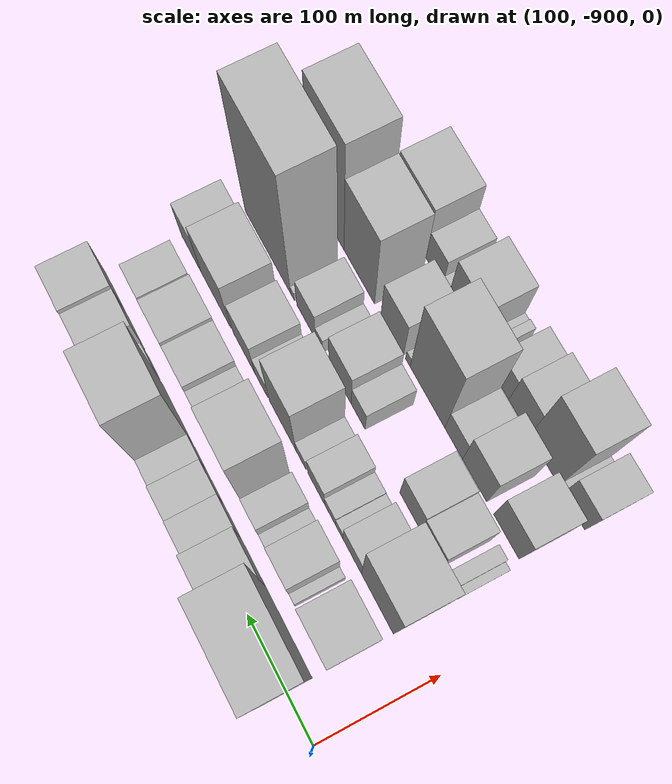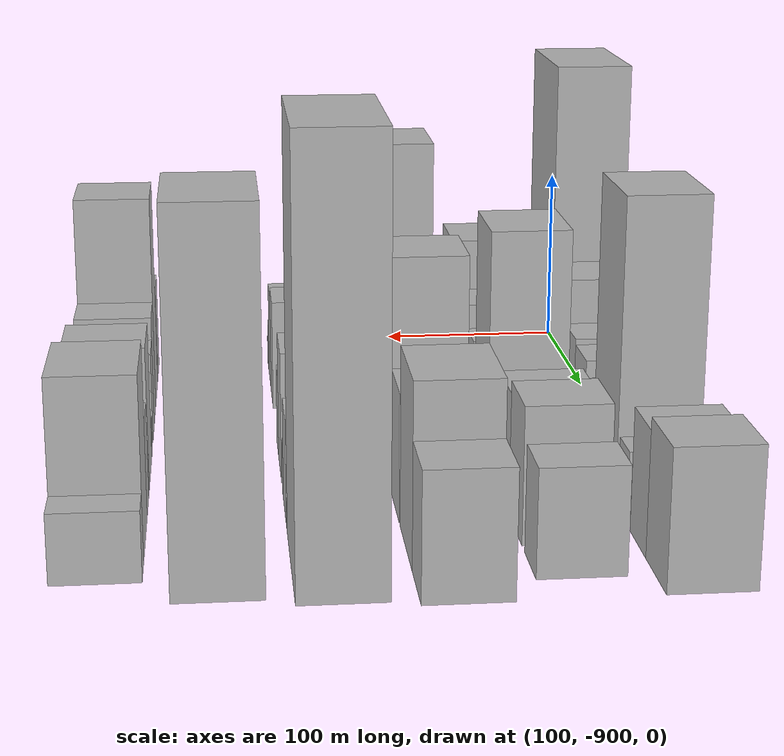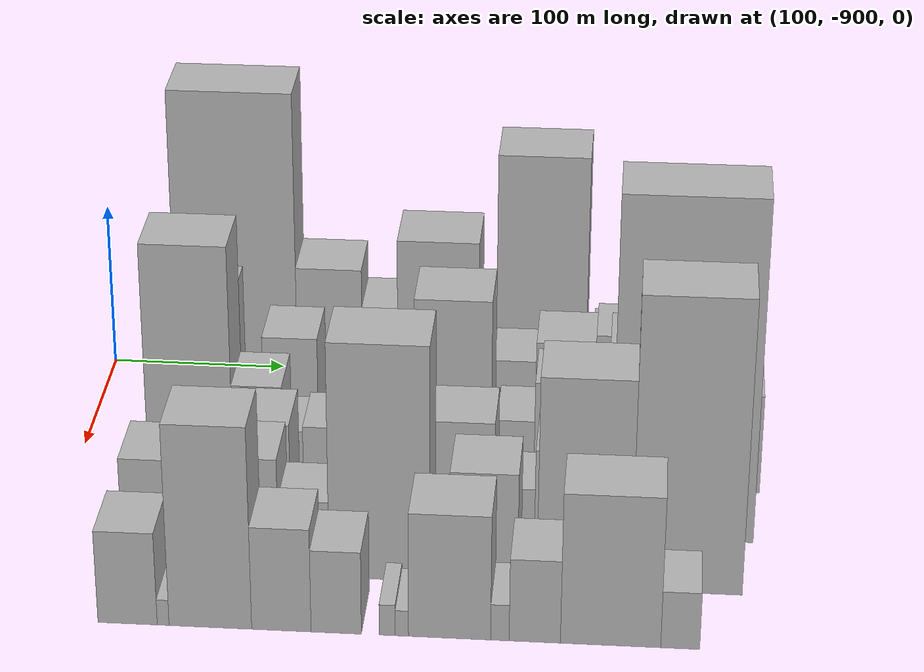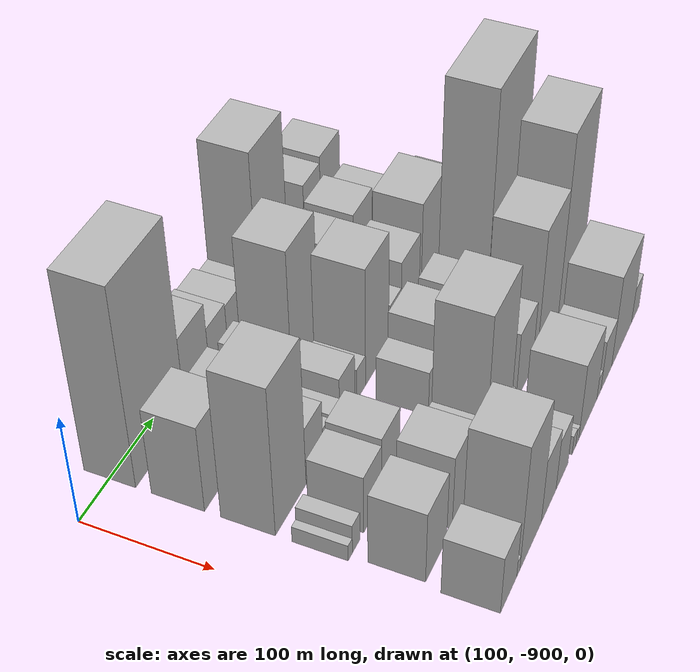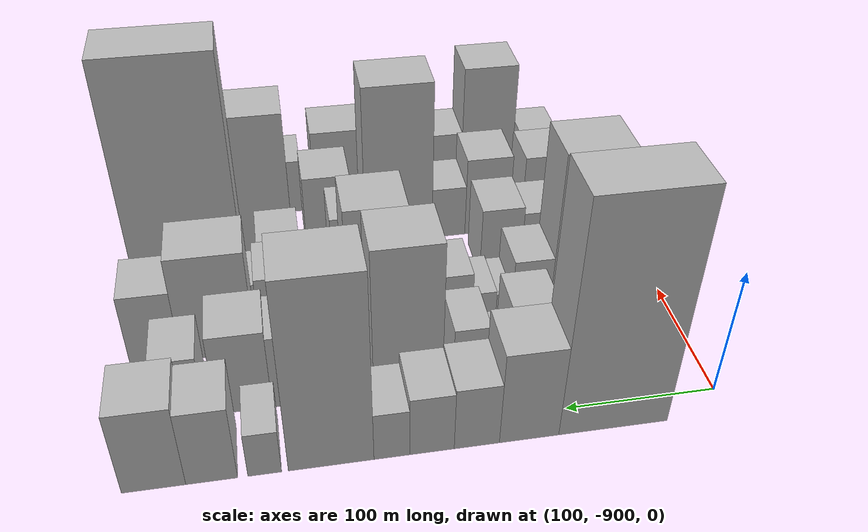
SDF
<sdf version="1.6">
 <world name="default">
  <model name="building_1">
   <static>1</static>
   <pose>100.0000 -824.5503 0 0.000000 0.000000 0.000000</pose>
   <link name="link">
    <pose>0 0 91.50 0 0 0</pose>
    <collision name="collision"><geometry><box><size>40.0000 70.8994 183.0000</size></box></geometry></collision>
    <visual name="visual">
     <cast_shadows>0</cast_shadows>
     <geometry><box><size>40.0000 70.8994 183.0000</size></box></geometry>
     <material>
      <script>
       <uri>model://HANNAS_wall/materials/scripts</uri>
       <uri>model://HANNAS_wall/materials/textures</uri>
       <name>vrc/HANNAS_wall</name>
      </script>
     </material>
    </visual>
   </link>
  </model>
  <model name="building_2">
   <static>1</static>
   <pose>100.0000 -770.1328 0 0.000000 0.000000 0.000000</pose>
   <link name="link">
    <pose>0 0 37.50 0 0 0</pose>
    <collision name="collision"><geometry><box><size>40.0000 37.9356 75.0000</size></box></geometry></collision>
    <visual name="visual">
     <cast_shadows>0</cast_shadows>
     <geometry><box><size>40.0000 37.9356 75.0000</size></box></geometry>
     <material>
      <script>
       <uri>model://HANNAS_wall/materials/scripts</uri>
       <uri>model://HANNAS_wall/materials/textures</uri>
       <name>vrc/HANNAS_wall</name>
      </script>
     </material>
    </visual>
   </link>
  </model>
  <model name="building_3">
   <static>1</static>
   <pose>100.0000 -736.9580 0 0.000000 0.000000 0.000000</pose>
   <link name="link">
    <pose>0 0 25.50 0 0 0</pose>
    <collision name="collision"><geometry><box><size>40.0000 28.4142 51.0000</size></box></geometry></collision>
    <visual name="visual">
     <cast_shadows>0</cast_shadows>
     <geometry><box><size>40.0000 28.4142 51.0000</size></box></geometry>
     <material>
      <script>
       <uri>model://HANNAS_wall/materials/scripts</uri>
       <uri>model://HANNAS_wall/materials/textures</uri>
       <name>vrc/HANNAS_wall</name>
      </script>
     </material>
    </visual>
   </link>
  </model>
  <model name="building_4">
   <static>1</static>
   <pose>100.0000 -708.9636 0 0.000000 0.000000 0.000000</pose>
   <link name="link">
    <pose>0 0 24.00 0 0 0</pose>
    <collision name="collision"><geometry><box><size>40.0000 27.5745 48.0000</size></box></geometry></collision>
    <visual name="visual">
     <cast_shadows>0</cast_shadows>
     <geometry><box><size>40.0000 27.5745 48.0000</size></box></geometry>
     <material>
      <script>
       <uri>model://HANNAS_wall/materials/scripts</uri>
       <uri>model://HANNAS_wall/materials/textures</uri>
       <name>vrc/HANNAS_wall</name>
      </script>
     </material>
    </visual>
   </link>
  </model>
  <model name="building_5">
   <static>1</static>
   <pose>100.0000 -684.1588 0 0.000000 0.000000 0.000000</pose>
   <link name="link">
    <pose>0 0 19.50 0 0 0</pose>
    <collision name="collision"><geometry><box><size>40.0000 22.0353 39.0000</size></box></geometry></collision>
    <visual name="visual">
     <cast_shadows>0</cast_shadows>
     <geometry><box><size>40.0000 22.0353 39.0000</size></box></geometry>
     <material>
      <script>
       <uri>model://HANNAS_wall/materials/scripts</uri>
       <uri>model://HANNAS_wall/materials/textures</uri>
       <name>vrc/HANNAS_wall</name>
      </script>
     </material>
    </visual>
   </link>
  </model>
  <model name="building_6">
   <static>1</static>
   <pose>100.0000 -647.2399 0 0.000000 0.000000 0.000000</pose>
   <link name="link">
    <pose>0 0 75.00 0 0 0</pose>
    <collision name="collision"><geometry><box><size>40.0000 51.8024 150.0000</size></box></geometry></collision>
    <visual name="visual">
     <cast_shadows>0</cast_shadows>
     <geometry><box><size>40.0000 51.8024 150.0000</size></box></geometry>
     <material>
      <script>
       <uri>model://HANNAS_wall/materials/scripts</uri>
       <uri>model://HANNAS_wall/materials/textures</uri>
       <name>vrc/HANNAS_wall</name>
      </script>
     </material>
    </visual>
   </link>
  </model>
  <model name="building_7">
   <static>1</static>
   <pose>100.0000 -607.3084 0 0.000000 0.000000 0.000000</pose>
   <link name="link">
    <pose>0 0 18.00 0 0 0</pose>
    <collision name="collision"><geometry><box><size>40.0000 20.0606 36.0000</size></box></geometry></collision>
    <visual name="visual">
     <cast_shadows>0</cast_shadows>
     <geometry><box><size>40.0000 20.0606 36.0000</size></box></geometry>
     <material>
      <script>
       <uri>model://HANNAS_wall/materials/scripts</uri>
       <uri>model://HANNAS_wall/materials/textures</uri>
       <name>vrc/HANNAS_wall</name>
      </script>
     </material>
    </visual>
   </link>
  </model>
  <model name="building_8">
   <static>1</static>
   <pose>100.0000 -576.0887 0 0.000000 0.000000 0.000000</pose>
   <link name="link">
    <pose>0 0 30.00 0 0 0</pose>
    <collision name="collision"><geometry><box><size>40.0000 30.3787 60.0000</size></box></geometry></collision>
    <visual name="visual">
     <cast_shadows>0</cast_shadows>
     <geometry><box><size>40.0000 30.3787 60.0000</size></box></geometry>
     <material>
      <script>
       <uri>model://HANNAS_wall/materials/scripts</uri>
       <uri>model://HANNAS_wall/materials/textures</uri>
       <name>vrc/HANNAS_wall</name>
      </script>
     </material>
    </visual>
   </link>
  </model>
  <model name="building_9">
   <static>1</static>
   <pose>100.0000 -542.3237 0 0.000000 0.000000 0.000000</pose>
   <link name="link">
    <pose>0 0 33.00 0 0 0</pose>
    <collision name="collision"><geometry><box><size>40.0000 37.1513 66.0000</size></box></geometry></collision>
    <visual name="visual">
     <cast_shadows>0</cast_shadows>
     <geometry><box><size>40.0000 37.1513 66.0000</size></box></geometry>
     <material>
      <script>
       <uri>model://HANNAS_wall/materials/scripts</uri>
       <uri>model://HANNAS_wall/materials/textures</uri>
       <name>vrc/HANNAS_wall</name>
      </script>
     </material>
    </visual>
   </link>
  </model>
  <model name="building_52">
   <static>1</static>
   <pose>152.0000 -838.8743 0 0.000000 0.000000 0.000000</pose>
   <link name="link">
    <pose>0 0 40.50 0 0 0</pose>
    <collision name="collision"><geometry><box><size>40.0000 42.2515 81.0000</size></box></geometry></collision>
    <visual name="visual">
     <cast_shadows>0</cast_shadows>
     <geometry><box><size>40.0000 42.2515 81.0000</size></box></geometry>
     <material>
      <script>
       <uri>model://HANNAS_wall/materials/scripts</uri>
       <uri>model://HANNAS_wall/materials/textures</uri>
       <name>vrc/HANNAS_wall</name>
      </script>
     </material>
    </visual>
   </link>
  </model>
  <model name="building_53">
   <static>1</static>
   <pose>152.0000 -806.5218 0 0.000000 0.000000 0.000000</pose>
   <link name="link">
    <pose>0 0 9.00 0 0 0</pose>
    <collision name="collision"><geometry><box><size>40.0000 8.4535 18.0000</size></box></geometry></collision>
    <visual name="visual">
     <cast_shadows>0</cast_shadows>
     <geometry><box><size>40.0000 8.4535 18.0000</size></box></geometry>
     <material>
      <script>
       <uri>model://HANNAS_wall/materials/scripts</uri>
       <uri>model://HANNAS_wall/materials/textures</uri>
       <name>vrc/HANNAS_wall</name>
      </script>
     </material>
    </visual>
   </link>
  </model>
  <model name="building_54">
   <static>1</static>
   <pose>152.0000 -786.6653 0 0.000000 0.000000 0.000000</pose>
   <link name="link">
    <pose>0 0 28.50 0 0 0</pose>
    <collision name="collision"><geometry><box><size>40.0000 31.2594 57.0000</size></box></geometry></collision>
    <visual name="visual">
     <cast_shadows>0</cast_shadows>
     <geometry><box><size>40.0000 31.2594 57.0000</size></box></geometry>
     <material>
      <script>
       <uri>model://HANNAS_wall/materials/scripts</uri>
       <uri>model://HANNAS_wall/materials/textures</uri>
       <name>vrc/HANNAS_wall</name>
      </script>
     </material>
    </visual>
   </link>
  </model>
  <model name="building_55">
   <static>1</static>
   <pose>152.0000 -761.8692 0 0.000000 0.000000 0.000000</pose>
   <link name="link">
    <pose>0 0 12.00 0 0 0</pose>
    <collision name="collision"><geometry><box><size>40.0000 10.3329 24.0000</size></box></geometry></collision>
    <visual name="visual">
     <cast_shadows>0</cast_shadows>
     <geometry><box><size>40.0000 10.3329 24.0000</size></box></geometry>
     <material>
      <script>
       <uri>model://HANNAS_wall/materials/scripts</uri>
       <uri>model://HANNAS_wall/materials/textures</uri>
       <name>vrc/HANNAS_wall</name>
      </script>
     </material>
    </visual>
   </link>
  </model>
  <model name="building_56">
   <static>1</static>
   <pose>152.0000 -744.6874 0 0.000000 0.000000 0.000000</pose>
   <link name="link">
    <pose>0 0 24.00 0 0 0</pose>
    <collision name="collision"><geometry><box><size>40.0000 24.0308 48.0000</size></box></geometry></collision>
    <visual name="visual">
     <cast_shadows>0</cast_shadows>
     <geometry><box><size>40.0000 24.0308 48.0000</size></box></geometry>
     <material>
      <script>
       <uri>model://HANNAS_wall/materials/scripts</uri>
       <uri>model://HANNAS_wall/materials/textures</uri>
       <name>vrc/HANNAS_wall</name>
      </script>
     </material>
    </visual>
   </link>
  </model>
  <model name="building_57">
   <static>1</static>
   <pose>152.0000 -702.9129 0 0.000000 0.000000 0.000000</pose>
   <link name="link">
    <pose>0 0 60.00 0 0 0</pose>
    <collision name="collision"><geometry><box><size>40.0000 45.5181 120.0000</size></box></geometry></collision>
    <visual name="visual">
     <cast_shadows>0</cast_shadows>
     <geometry><box><size>40.0000 45.5181 120.0000</size></box></geometry>
     <material>
      <script>
       <uri>model://HANNAS_wall/materials/scripts</uri>
       <uri>model://HANNAS_wall/materials/textures</uri>
       <name>vrc/HANNAS_wall</name>
      </script>
     </material>
    </visual>
   </link>
  </model>
  <model name="building_58">
   <static>1</static>
   <pose>152.0000 -660.0208 0 0.000000 0.000000 0.000000</pose>
   <link name="link">
    <pose>0 0 24.00 0 0 0</pose>
    <collision name="collision"><geometry><box><size>40.0000 24.2662 48.0000</size></box></geometry></collision>
    <visual name="visual">
     <cast_shadows>0</cast_shadows>
     <geometry><box><size>40.0000 24.2662 48.0000</size></box></geometry>
     <material>
      <script>
       <uri>model://HANNAS_wall/materials/scripts</uri>
       <uri>model://HANNAS_wall/materials/textures</uri>
       <name>vrc/HANNAS_wall</name>
      </script>
     </material>
    </visual>
   </link>
  </model>
  <model name="building_59">
   <static>1</static>
   <pose>152.0000 -631.2633 0 0.000000 0.000000 0.000000</pose>
   <link name="link">
    <pose>0 0 30.00 0 0 0</pose>
    <collision name="collision"><geometry><box><size>40.0000 33.2488 60.0000</size></box></geometry></collision>
    <visual name="visual">
     <cast_shadows>0</cast_shadows>
     <geometry><box><size>40.0000 33.2488 60.0000</size></box></geometry>
     <material>
      <script>
       <uri>model://HANNAS_wall/materials/scripts</uri>
       <uri>model://HANNAS_wall/materials/textures</uri>
       <name>vrc/HANNAS_wall</name>
      </script>
     </material>
    </visual>
   </link>
  </model>
  <model name="building_60">
   <static>1</static>
   <pose>152.0000 -596.8617 0 0.000000 0.000000 0.000000</pose>
   <link name="link">
    <pose>0 0 33.00 0 0 0</pose>
    <collision name="collision"><geometry><box><size>40.0000 35.5542 66.0000</size></box></geometry></collision>
    <visual name="visual">
     <cast_shadows>0</cast_shadows>
     <geometry><box><size>40.0000 35.5542 66.0000</size></box></geometry>
     <material>
      <script>
       <uri>model://HANNAS_wall/materials/scripts</uri>
       <uri>model://HANNAS_wall/materials/textures</uri>
       <name>vrc/HANNAS_wall</name>
      </script>
     </material>
    </visual>
   </link>
  </model>
  <model name="building_61">
   <static>1</static>
   <pose>152.0000 -557.7539 0 0.000000 0.000000 0.000000</pose>
   <link name="link">
    <pose>0 0 25.50 0 0 0</pose>
    <collision name="collision"><geometry><box><size>40.0000 28.6614 51.0000</size></box></geometry></collision>
    <visual name="visual">
     <cast_shadows>0</cast_shadows>
     <geometry><box><size>40.0000 28.6614 51.0000</size></box></geometry>
     <material>
      <script>
       <uri>model://HANNAS_wall/materials/scripts</uri>
       <uri>model://HANNAS_wall/materials/textures</uri>
       <name>vrc/HANNAS_wall</name>
      </script>
     </material>
    </visual>
   </link>
  </model>
  <model name="building_105">
   <static>1</static>
   <pose>204.0000 -836.2265 0 0.000000 0.000000 0.000000</pose>
   <link name="link">
    <pose>0 0 69.00 0 0 0</pose>
    <collision name="collision"><geometry><box><size>40.0000 47.5469 138.0000</size></box></geometry></collision>
    <visual name="visual">
     <cast_shadows>0</cast_shadows>
     <geometry><box><size>40.0000 47.5469 138.0000</size></box></geometry>
     <material>
      <script>
       <uri>model://HANNAS_wall/materials/scripts</uri>
       <uri>model://HANNAS_wall/materials/textures</uri>
       <name>vrc/HANNAS_wall</name>
      </script>
     </material>
    </visual>
   </link>
  </model>
  <model name="building_106">
   <static>1</static>
   <pose>204.0000 -798.6100 0 0.000000 0.000000 0.000000</pose>
   <link name="link">
    <pose>0 0 27.00 0 0 0</pose>
    <collision name="collision"><geometry><box><size>40.0000 27.6861 54.0000</size></box></geometry></collision>
    <visual name="visual">
     <cast_shadows>0</cast_shadows>
     <geometry><box><size>40.0000 27.6861 54.0000</size></box></geometry>
     <material>
      <script>
       <uri>model://HANNAS_wall/materials/scripts</uri>
       <uri>model://HANNAS_wall/materials/textures</uri>
       <name>vrc/HANNAS_wall</name>
      </script>
     </material>
    </visual>
   </link>
  </model>
  <model name="building_107">
   <static>1</static>
   <pose>204.0000 -779.1388 0 0.000000 0.000000 0.000000</pose>
   <link name="link">
    <pose>0 0 13.50 0 0 0</pose>
    <collision name="collision"><geometry><box><size>40.0000 11.2562 27.0000</size></box></geometry></collision>
    <visual name="visual">
     <cast_shadows>0</cast_shadows>
     <geometry><box><size>40.0000 11.2562 27.0000</size></box></geometry>
     <material>
      <script>
       <uri>model://HANNAS_wall/materials/scripts</uri>
       <uri>model://HANNAS_wall/materials/textures</uri>
       <name>vrc/HANNAS_wall</name>
      </script>
     </material>
    </visual>
   </link>
  </model>
  <model name="building_108">
   <static>1</static>
   <pose>204.0000 -765.1282 0 0.000000 0.000000 0.000000</pose>
   <link name="link">
    <pose>0 0 15.00 0 0 0</pose>
    <collision name="collision"><geometry><box><size>40.0000 16.7650 30.0000</size></box></geometry></collision>
    <visual name="visual">
     <cast_shadows>0</cast_shadows>
     <geometry><box><size>40.0000 16.7650 30.0000</size></box></geometry>
     <material>
      <script>
       <uri>model://HANNAS_wall/materials/scripts</uri>
       <uri>model://HANNAS_wall/materials/textures</uri>
       <name>vrc/HANNAS_wall</name>
      </script>
     </material>
    </visual>
   </link>
  </model>
  <model name="building_109">
   <static>1</static>
   <pose>204.0000 -743.6783 0 0.000000 0.000000 0.000000</pose>
   <link name="link">
    <pose>0 0 24.00 0 0 0</pose>
    <collision name="collision"><geometry><box><size>40.0000 26.1348 48.0000</size></box></geometry></collision>
    <visual name="visual">
     <cast_shadows>0</cast_shadows>
     <geometry><box><size>40.0000 26.1348 48.0000</size></box></geometry>
     <material>
      <script>
       <uri>model://HANNAS_wall/materials/scripts</uri>
       <uri>model://HANNAS_wall/materials/textures</uri>
       <name>vrc/HANNAS_wall</name>
      </script>
     </material>
    </visual>
   </link>
  </model>
  <model name="building_110">
   <static>1</static>
   <pose>204.0000 -719.7931 0 0.000000 0.000000 0.000000</pose>
   <link name="link">
    <pose>0 0 15.00 0 0 0</pose>
    <collision name="collision"><geometry><box><size>40.0000 15.6357 30.0000</size></box></geometry></collision>
    <visual name="visual">
     <cast_shadows>0</cast_shadows>
     <geometry><box><size>40.0000 15.6357 30.0000</size></box></geometry>
     <material>
      <script>
       <uri>model://HANNAS_wall/materials/scripts</uri>
       <uri>model://HANNAS_wall/materials/textures</uri>
       <name>vrc/HANNAS_wall</name>
      </script>
     </material>
    </visual>
   </link>
  </model>
  <model name="building_111">
   <static>1</static>
   <pose>204.0000 -690.8707 0 0.000000 0.000000 0.000000</pose>
   <link name="link">
    <pose>0 0 55.50 0 0 0</pose>
    <collision name="collision"><geometry><box><size>40.0000 42.2090 111.0000</size></box></geometry></collision>
    <visual name="visual">
     <cast_shadows>0</cast_shadows>
     <geometry><box><size>40.0000 42.2090 111.0000</size></box></geometry>
     <material>
      <script>
       <uri>model://HANNAS_wall/materials/scripts</uri>
       <uri>model://HANNAS_wall/materials/textures</uri>
       <name>vrc/HANNAS_wall</name>
      </script>
     </material>
    </visual>
   </link>
  </model>
  <model name="building_112">
   <static>1</static>
   <pose>204.0000 -656.4438 0 0.000000 0.000000 0.000000</pose>
   <link name="link">
    <pose>0 0 19.50 0 0 0</pose>
    <collision name="collision"><geometry><box><size>40.0000 20.6449 39.0000</size></box></geometry></collision>
    <visual name="visual">
     <cast_shadows>0</cast_shadows>
     <geometry><box><size>40.0000 20.6449 39.0000</size></box></geometry>
     <material>
      <script>
       <uri>model://HANNAS_wall/materials/scripts</uri>
       <uri>model://HANNAS_wall/materials/textures</uri>
       <name>vrc/HANNAS_wall</name>
      </script>
     </material>
    </visual>
   </link>
  </model>
  <model name="building_113">
   <static>1</static>
   <pose>204.0000 -628.1800 0 0.000000 0.000000 0.000000</pose>
   <link name="link">
    <pose>0 0 31.50 0 0 0</pose>
    <collision name="collision"><geometry><box><size>40.0000 35.8825 63.0000</size></box></geometry></collision>
    <visual name="visual">
     <cast_shadows>0</cast_shadows>
     <geometry><box><size>40.0000 35.8825 63.0000</size></box></geometry>
     <material>
      <script>
       <uri>model://HANNAS_wall/materials/scripts</uri>
       <uri>model://HANNAS_wall/materials/textures</uri>
       <name>vrc/HANNAS_wall</name>
      </script>
     </material>
    </visual>
   </link>
  </model>
  <model name="building_114">
   <static>1</static>
   <pose>204.0000 -581.2128 0 0.000000 0.000000 0.000000</pose>
   <link name="link">
    <pose>0 0 43.50 0 0 0</pose>
    <collision name="collision"><geometry><box><size>40.0000 50.0518 87.0000</size></box></geometry></collision>
    <visual name="visual">
     <cast_shadows>0</cast_shadows>
     <geometry><box><size>40.0000 50.0518 87.0000</size></box></geometry>
     <material>
      <script>
       <uri>model://HANNAS_wall/materials/scripts</uri>
       <uri>model://HANNAS_wall/materials/textures</uri>
       <name>vrc/HANNAS_wall</name>
      </script>
     </material>
    </visual>
   </link>
  </model>
  <model name="building_115">
   <static>1</static>
   <pose>204.0000 -539.4484 0 0.000000 0.000000 0.000000</pose>
   <link name="link">
    <pose>0 0 30.00 0 0 0</pose>
    <collision name="collision"><geometry><box><size>40.0000 33.4770 60.0000</size></box></geometry></collision>
    <visual name="visual">
     <cast_shadows>0</cast_shadows>
     <geometry><box><size>40.0000 33.4770 60.0000</size></box></geometry>
     <material>
      <script>
       <uri>model://HANNAS_wall/materials/scripts</uri>
       <uri>model://HANNAS_wall/materials/textures</uri>
       <name>vrc/HANNAS_wall</name>
      </script>
     </material>
    </visual>
   </link>
  </model>
  <model name="building_152">
   <static>1</static>
   <pose>256.0000 -856.6260 0 0.000000 0.000000 0.000000</pose>
   <link name="link">
    <pose>0 0 7.50 0 0 0</pose>
    <collision name="collision"><geometry><box><size>40.0000 6.7480 15.0000</size></box></geometry></collision>
    <visual name="visual">
     <cast_shadows>0</cast_shadows>
     <geometry><box><size>40.0000 6.7480 15.0000</size></box></geometry>
     <material>
      <script>
       <uri>model://HANNAS_wall/materials/scripts</uri>
       <uri>model://HANNAS_wall/materials/textures</uri>
       <name>vrc/HANNAS_wall</name>
      </script>
     </material>
    </visual>
   </link>
  </model>
  <model name="building_153">
   <static>1</static>
   <pose>256.0000 -847.1265 0 0.000000 0.000000 0.000000</pose>
   <link name="link">
    <pose>0 0 13.50 0 0 0</pose>
    <collision name="collision"><geometry><box><size>40.0000 12.2511 27.0000</size></box></geometry></collision>
    <visual name="visual">
     <cast_shadows>0</cast_shadows>
     <geometry><box><size>40.0000 12.2511 27.0000</size></box></geometry>
     <material>
      <script>
       <uri>model://HANNAS_wall/materials/scripts</uri>
       <uri>model://HANNAS_wall/materials/textures</uri>
       <name>vrc/HANNAS_wall</name>
      </script>
     </material>
    </visual>
   </link>
  </model>
  <model name="building_154">
   <static>1</static>
   <pose>256.0000 -820.1076 0 0.000000 0.000000 0.000000</pose>
   <link name="link">
    <pose>0 0 27.00 0 0 0</pose>
    <collision name="collision"><geometry><box><size>40.0000 29.7866 54.0000</size></box></geometry></collision>
    <visual name="visual">
     <cast_shadows>0</cast_shadows>
     <geometry><box><size>40.0000 29.7866 54.0000</size></box></geometry>
     <material>
      <script>
       <uri>model://HANNAS_wall/materials/scripts</uri>
       <uri>model://HANNAS_wall/materials/textures</uri>
       <name>vrc/HANNAS_wall</name>
      </script>
     </material>
    </visual>
   </link>
  </model>
  <model name="building_155">
   <static>1</static>
   <pose>256.0000 -789.6545 0 0.000000 0.000000 0.000000</pose>
   <link name="link">
    <pose>0 0 30.00 0 0 0</pose>
    <collision name="collision"><geometry><box><size>40.0000 31.1197 60.0000</size></box></geometry></collision>
    <visual name="visual">
     <cast_shadows>0</cast_shadows>
     <geometry><box><size>40.0000 31.1197 60.0000</size></box></geometry>
     <material>
      <script>
       <uri>model://HANNAS_wall/materials/scripts</uri>
       <uri>model://HANNAS_wall/materials/textures</uri>
       <name>vrc/HANNAS_wall</name>
      </script>
     </material>
    </visual>
   </link>
  </model>
  <model name="building_156">
   <static>1</static>
   <pose>256.0000 -710.5164 0 0.000000 0.000000 0.000000</pose>
   <link name="link">
    <pose>0 0 21.00 0 0 0</pose>
    <collision name="collision"><geometry><box><size>40.0000 21.7188 42.0000</size></box></geometry></collision>
    <visual name="visual">
     <cast_shadows>0</cast_shadows>
     <geometry><box><size>40.0000 21.7188 42.0000</size></box></geometry>
     <material>
      <script>
       <uri>model://HANNAS_wall/materials/scripts</uri>
       <uri>model://HANNAS_wall/materials/textures</uri>
       <name>vrc/HANNAS_wall</name>
      </script>
     </material>
    </visual>
   </link>
  </model>
  <model name="building_157">
   <static>1</static>
   <pose>256.0000 -682.2342 0 0.000000 0.000000 0.000000</pose>
   <link name="link">
    <pose>0 0 33.00 0 0 0</pose>
    <collision name="collision"><geometry><box><size>40.0000 34.8455 66.0000</size></box></geometry></collision>
    <visual name="visual">
     <cast_shadows>0</cast_shadows>
     <geometry><box><size>40.0000 34.8455 66.0000</size></box></geometry>
     <material>
      <script>
       <uri>model://HANNAS_wall/materials/scripts</uri>
       <uri>model://HANNAS_wall/materials/textures</uri>
       <name>vrc/HANNAS_wall</name>
      </script>
     </material>
    </visual>
   </link>
  </model>
  <model name="building_158">
   <static>1</static>
   <pose>256.0000 -648.9905 0 0.000000 0.000000 0.000000</pose>
   <link name="link">
    <pose>0 0 13.50 0 0 0</pose>
    <collision name="collision"><geometry><box><size>40.0000 11.6420 27.0000</size></box></geometry></collision>
    <visual name="visual">
     <cast_shadows>0</cast_shadows>
     <geometry><box><size>40.0000 11.6420 27.0000</size></box></geometry>
     <material>
      <script>
       <uri>model://HANNAS_wall/materials/scripts</uri>
       <uri>model://HANNAS_wall/materials/textures</uri>
       <name>vrc/HANNAS_wall</name>
      </script>
     </material>
    </visual>
   </link>
  </model>
  <model name="building_159">
   <static>1</static>
   <pose>256.0000 -628.1024 0 0.000000 0.000000 0.000000</pose>
   <link name="link">
    <pose>0 0 25.50 0 0 0</pose>
    <collision name="collision"><geometry><box><size>40.0000 30.1342 51.0000</size></box></geometry></collision>
    <visual name="visual">
     <cast_shadows>0</cast_shadows>
     <geometry><box><size>40.0000 30.1342 51.0000</size></box></geometry>
     <material>
      <script>
       <uri>model://HANNAS_wall/materials/scripts</uri>
       <uri>model://HANNAS_wall/materials/textures</uri>
       <name>vrc/HANNAS_wall</name>
      </script>
     </material>
    </visual>
   </link>
  </model>
  <model name="building_160">
   <static>1</static>
   <pose>256.0000 -605.8731 0 0.000000 0.000000 0.000000</pose>
   <link name="link">
    <pose>0 0 7.50 0 0 0</pose>
    <collision name="collision"><geometry><box><size>40.0000 6.3244 15.0000</size></box></geometry></collision>
    <visual name="visual">
     <cast_shadows>0</cast_shadows>
     <geometry><box><size>40.0000 6.3244 15.0000</size></box></geometry>
     <material>
      <script>
       <uri>model://HANNAS_wall/materials/scripts</uri>
       <uri>model://HANNAS_wall/materials/textures</uri>
       <name>vrc/HANNAS_wall</name>
      </script>
     </material>
    </visual>
   </link>
  </model>
  <model name="building_161">
   <static>1</static>
   <pose>256.0000 -564.8693 0 0.000000 0.000000 0.000000</pose>
   <link name="link">
    <pose>0 0 100.50 0 0 0</pose>
    <collision name="collision"><geometry><box><size>40.0000 75.6833 201.0000</size></box></geometry></collision>
    <visual name="visual">
     <cast_shadows>0</cast_shadows>
     <geometry><box><size>40.0000 75.6833 201.0000</size></box></geometry>
     <material>
      <script>
       <uri>model://HANNAS_wall/materials/scripts</uri>
       <uri>model://HANNAS_wall/materials/textures</uri>
       <name>vrc/HANNAS_wall</name>
      </script>
     </material>
    </visual>
   </link>
  </model>
  <model name="building_202">
   <static>1</static>
   <pose>308.0000 -837.6870 0 0.000000 0.000000 0.000000</pose>
   <link name="link">
    <pose>0 0 33.00 0 0 0</pose>
    <collision name="collision"><geometry><box><size>40.0000 36.6260 66.0000</size></box></geometry></collision>
    <visual name="visual">
     <cast_shadows>0</cast_shadows>
     <geometry><box><size>40.0000 36.6260 66.0000</size></box></geometry>
     <material>
      <script>
       <uri>model://HANNAS_wall/materials/scripts</uri>
       <uri>model://HANNAS_wall/materials/textures</uri>
       <name>vrc/HANNAS_wall</name>
      </script>
     </material>
    </visual>
   </link>
  </model>
  <model name="building_203">
   <static>1</static>
   <pose>308.0000 -791.6857 0 0.000000 0.000000 0.000000</pose>
   <link name="link">
    <pose>0 0 34.50 0 0 0</pose>
    <collision name="collision"><geometry><box><size>40.0000 35.3766 69.0000</size></box></geometry></collision>
    <visual name="visual">
     <cast_shadows>0</cast_shadows>
     <geometry><box><size>40.0000 35.3766 69.0000</size></box></geometry>
     <material>
      <script>
       <uri>model://HANNAS_wall/materials/scripts</uri>
       <uri>model://HANNAS_wall/materials/textures</uri>
       <name>vrc/HANNAS_wall</name>
      </script>
     </material>
    </visual>
   </link>
  </model>
  <model name="building_204">
   <static>1</static>
   <pose>308.0000 -760.8427 0 0.000000 0.000000 0.000000</pose>
   <link name="link">
    <pose>0 0 22.50 0 0 0</pose>
    <collision name="collision"><geometry><box><size>40.0000 26.3092 45.0000</size></box></geometry></collision>
    <visual name="visual">
     <cast_shadows>0</cast_shadows>
     <geometry><box><size>40.0000 26.3092 45.0000</size></box></geometry>
     <material>
      <script>
       <uri>model://HANNAS_wall/materials/scripts</uri>
       <uri>model://HANNAS_wall/materials/textures</uri>
       <name>vrc/HANNAS_wall</name>
      </script>
     </material>
    </visual>
   </link>
  </model>
  <model name="building_205">
   <static>1</static>
   <pose>308.0000 -721.4095 0 0.000000 0.000000 0.000000</pose>
   <link name="link">
    <pose>0 0 69.00 0 0 0</pose>
    <collision name="collision"><geometry><box><size>40.0000 52.5573 138.0000</size></box></geometry></collision>
    <visual name="visual">
     <cast_shadows>0</cast_shadows>
     <geometry><box><size>40.0000 52.5573 138.0000</size></box></geometry>
     <material>
      <script>
       <uri>model://HANNAS_wall/materials/scripts</uri>
       <uri>model://HANNAS_wall/materials/textures</uri>
       <name>vrc/HANNAS_wall</name>
      </script>
     </material>
    </visual>
   </link>
  </model>
  <model name="building_206">
   <static>1</static>
   <pose>308.0000 -691.4892 0 0.000000 0.000000 0.000000</pose>
   <link name="link">
    <pose>0 0 9.00 0 0 0</pose>
    <collision name="collision"><geometry><box><size>40.0000 7.2832 18.0000</size></box></geometry></collision>
    <visual name="visual">
     <cast_shadows>0</cast_shadows>
     <geometry><box><size>40.0000 7.2832 18.0000</size></box></geometry>
     <material>
      <script>
       <uri>model://HANNAS_wall/materials/scripts</uri>
       <uri>model://HANNAS_wall/materials/textures</uri>
       <name>vrc/HANNAS_wall</name>
      </script>
     </material>
    </visual>
   </link>
  </model>
  <model name="building_207">
   <static>1</static>
   <pose>308.0000 -667.1778 0 0.000000 0.000000 0.000000</pose>
   <link name="link">
    <pose>0 0 33.00 0 0 0</pose>
    <collision name="collision"><geometry><box><size>40.0000 35.3398 66.0000</size></box></geometry></collision>
    <visual name="visual">
     <cast_shadows>0</cast_shadows>
     <geometry><box><size>40.0000 35.3398 66.0000</size></box></geometry>
     <material>
      <script>
       <uri>model://HANNAS_wall/materials/scripts</uri>
       <uri>model://HANNAS_wall/materials/textures</uri>
       <name>vrc/HANNAS_wall</name>
      </script>
     </material>
    </visual>
   </link>
  </model>
  <model name="building_208">
   <static>1</static>
   <pose>308.0000 -615.1337 0 0.000000 0.000000 0.000000</pose>
   <link name="link">
    <pose>0 0 61.50 0 0 0</pose>
    <collision name="collision"><geometry><box><size>40.0000 48.7484 123.0000</size></box></geometry></collision>
    <visual name="visual">
     <cast_shadows>0</cast_shadows>
     <geometry><box><size>40.0000 48.7484 123.0000</size></box></geometry>
     <material>
      <script>
       <uri>model://HANNAS_wall/materials/scripts</uri>
       <uri>model://HANNAS_wall/materials/textures</uri>
       <name>vrc/HANNAS_wall</name>
      </script>
     </material>
    </visual>
   </link>
  </model>
  <model name="building_209">
   <static>1</static>
   <pose>308.0000 -562.1556 0 0.000000 0.000000 0.000000</pose>
   <link name="link">
    <pose>0 0 85.50 0 0 0</pose>
    <collision name="collision"><geometry><box><size>40.0000 57.2077 171.0000</size></box></geometry></collision>
    <visual name="visual">
     <cast_shadows>0</cast_shadows>
     <geometry><box><size>40.0000 57.2077 171.0000</size></box></geometry>
     <material>
      <script>
       <uri>model://HANNAS_wall/materials/scripts</uri>
       <uri>model://HANNAS_wall/materials/textures</uri>
       <name>vrc/HANNAS_wall</name>
      </script>
     </material>
    </visual>
   </link>
  </model>
  <model name="building_246">
   <static>1</static>
   <pose>360.0000 -844.8084 0 0.000000 0.000000 0.000000</pose>
   <link name="link">
    <pose>0 0 27.00 0 0 0</pose>
    <collision name="collision"><geometry><box><size>40.0000 30.3833 54.0000</size></box></geometry></collision>
    <visual name="visual">
     <cast_shadows>0</cast_shadows>
     <geometry><box><size>40.0000 30.3833 54.0000</size></box></geometry>
     <material>
      <script>
       <uri>model://HANNAS_wall/materials/scripts</uri>
       <uri>model://HANNAS_wall/materials/textures</uri>
       <name>vrc/HANNAS_wall</name>
      </script>
     </material>
    </visual>
   </link>
  </model>
  <model name="building_247">
   <static>1</static>
   <pose>360.0000 -826.5943 0 0.000000 0.000000 0.000000</pose>
   <link name="link">
    <pose>0 0 7.50 0 0 0</pose>
    <collision name="collision"><geometry><box><size>40.0000 6.0448 15.0000</size></box></geometry></collision>
    <visual name="visual">
     <cast_shadows>0</cast_shadows>
     <geometry><box><size>40.0000 6.0448 15.0000</size></box></geometry>
     <material>
      <script>
       <uri>model://HANNAS_wall/materials/scripts</uri>
       <uri>model://HANNAS_wall/materials/textures</uri>
       <name>vrc/HANNAS_wall</name>
      </script>
     </material>
    </visual>
   </link>
  </model>
  <model name="building_248">
   <static>1</static>
   <pose>360.0000 -802.4609 0 0.000000 0.000000 0.000000</pose>
   <link name="link">
    <pose>0 0 58.50 0 0 0</pose>
    <collision name="collision"><geometry><box><size>40.0000 42.2220 117.0000</size></box></geometry></collision>
    <visual name="visual">
     <cast_shadows>0</cast_shadows>
     <geometry><box><size>40.0000 42.2220 117.0000</size></box></geometry>
     <material>
      <script>
       <uri>model://HANNAS_wall/materials/scripts</uri>
       <uri>model://HANNAS_wall/materials/textures</uri>
       <name>vrc/HANNAS_wall</name>
      </script>
     </material>
    </visual>
   </link>
  </model>
  <model name="building_249">
   <static>1</static>
   <pose>360.0000 -766.2390 0 0.000000 0.000000 0.000000</pose>
   <link name="link">
    <pose>0 0 30.00 0 0 0</pose>
    <collision name="collision"><geometry><box><size>40.0000 30.2217 60.0000</size></box></geometry></collision>
    <visual name="visual">
     <cast_shadows>0</cast_shadows>
     <geometry><box><size>40.0000 30.2217 60.0000</size></box></geometry>
     <material>
      <script>
       <uri>model://HANNAS_wall/materials/scripts</uri>
       <uri>model://HANNAS_wall/materials/textures</uri>
       <name>vrc/HANNAS_wall</name>
      </script>
     </material>
    </visual>
   </link>
  </model>
  <model name="building_250">
   <static>1</static>
   <pose>360.0000 -738.3507 0 0.000000 0.000000 0.000000</pose>
   <link name="link">
    <pose>0 0 24.00 0 0 0</pose>
    <collision name="collision"><geometry><box><size>40.0000 25.5550 48.0000</size></box></geometry></collision>
    <visual name="visual">
     <cast_shadows>0</cast_shadows>
     <geometry><box><size>40.0000 25.5550 48.0000</size></box></geometry>
     <material>
      <script>
       <uri>model://HANNAS_wall/materials/scripts</uri>
       <uri>model://HANNAS_wall/materials/textures</uri>
       <name>vrc/HANNAS_wall</name>
      </script>
     </material>
    </visual>
   </link>
  </model>
  <model name="building_251">
   <static>1</static>
   <pose>360.0000 -712.5058 0 0.000000 0.000000 0.000000</pose>
   <link name="link">
    <pose>0 0 9.00 0 0 0</pose>
    <collision name="collision"><geometry><box><size>40.0000 8.1348 18.0000</size></box></geometry></collision>
    <visual name="visual">
     <cast_shadows>0</cast_shadows>
     <geometry><box><size>40.0000 8.1348 18.0000</size></box></geometry>
     <material>
      <script>
       <uri>model://HANNAS_wall/materials/scripts</uri>
       <uri>model://HANNAS_wall/materials/textures</uri>
       <name>vrc/HANNAS_wall</name>
      </script>
     </material>
    </visual>
   </link>
  </model>
  <model name="building_252">
   <static>1</static>
   <pose>360.0000 -705.0869 0 0.000000 0.000000 0.000000</pose>
   <link name="link">
    <pose>0 0 7.50 0 0 0</pose>
    <collision name="collision"><geometry><box><size>40.0000 6.7030 15.0000</size></box></geometry></collision>
    <visual name="visual">
     <cast_shadows>0</cast_shadows>
     <geometry><box><size>40.0000 6.7030 15.0000</size></box></geometry>
     <material>
      <script>
       <uri>model://HANNAS_wall/materials/scripts</uri>
       <uri>model://HANNAS_wall/materials/textures</uri>
       <name>vrc/HANNAS_wall</name>
      </script>
     </material>
    </visual>
   </link>
  </model>
  <model name="building_253">
   <static>1</static>
   <pose>360.0000 -681.0065 0 0.000000 0.000000 0.000000</pose>
   <link name="link">
    <pose>0 0 36.00 0 0 0</pose>
    <collision name="collision"><geometry><box><size>40.0000 41.4577 72.0000</size></box></geometry></collision>
    <visual name="visual">
     <cast_shadows>0</cast_shadows>
     <geometry><box><size>40.0000 41.4577 72.0000</size></box></geometry>
     <material>
      <script>
       <uri>model://HANNAS_wall/materials/scripts</uri>
       <uri>model://HANNAS_wall/materials/textures</uri>
       <name>vrc/HANNAS_wall</name>
      </script>
     </material>
    </visual>
   </link>
  </model>
  <model name="building_254">
   <static>1</static>
   <pose>360.0000 -655.6051 0 0.000000 0.000000 0.000000</pose>
   <link name="link">
    <pose>0 0 10.50 0 0 0</pose>
    <collision name="collision"><geometry><box><size>40.0000 9.3452 21.0000</size></box></geometry></collision>
    <visual name="visual">
     <cast_shadows>0</cast_shadows>
     <geometry><box><size>40.0000 9.3452 21.0000</size></box></geometry>
     <material>
      <script>
       <uri>model://HANNAS_wall/materials/scripts</uri>
       <uri>model://HANNAS_wall/materials/textures</uri>
       <name>vrc/HANNAS_wall</name>
      </script>
     </material>
    </visual>
   </link>
  </model>
  <model name="building_255">
   <static>1</static>
   <pose>360.0000 -638.0552 0 0.000000 0.000000 0.000000</pose>
   <link name="link">
    <pose>0 0 24.00 0 0 0</pose>
    <collision name="collision"><geometry><box><size>40.0000 25.7547 48.0000</size></box></geometry></collision>
    <visual name="visual">
     <cast_shadows>0</cast_shadows>
     <geometry><box><size>40.0000 25.7547 48.0000</size></box></geometry>
     <material>
      <script>
       <uri>model://HANNAS_wall/materials/scripts</uri>
       <uri>model://HANNAS_wall/materials/textures</uri>
       <name>vrc/HANNAS_wall</name>
      </script>
     </material>
    </visual>
   </link>
  </model>
  <model name="building_256">
   <static>1</static>
   <pose>360.0000 -600.0514 0 0.000000 0.000000 0.000000</pose>
   <link name="link">
    <pose>0 0 43.50 0 0 0</pose>
    <collision name="collision"><geometry><box><size>40.0000 50.2529 87.0000</size></box></geometry></collision>
    <visual name="visual">
     <cast_shadows>0</cast_shadows>
     <geometry><box><size>40.0000 50.2529 87.0000</size></box></geometry>
     <material>
      <script>
       <uri>model://HANNAS_wall/materials/scripts</uri>
       <uri>model://HANNAS_wall/materials/textures</uri>
       <name>vrc/HANNAS_wall</name>
      </script>
     </material>
    </visual>
   </link>
  </model>
  <model name="building_257">
   <static>1</static>
   <pose>360.0000 -565.1873 0 0.000000 0.000000 0.000000</pose>
   <link name="link">
    <pose>0 0 16.50 0 0 0</pose>
    <collision name="collision"><geometry><box><size>40.0000 19.4753 33.0000</size></box></geometry></collision>
    <visual name="visual">
     <cast_shadows>0</cast_shadows>
     <geometry><box><size>40.0000 19.4753 33.0000</size></box></geometry>
     <material>
      <script>
       <uri>model://HANNAS_wall/materials/scripts</uri>
       <uri>model://HANNAS_wall/materials/textures</uri>
       <name>vrc/HANNAS_wall</name>
      </script>
     </material>
    </visual>
   </link>
  </model>
 </world>
</sdf>
